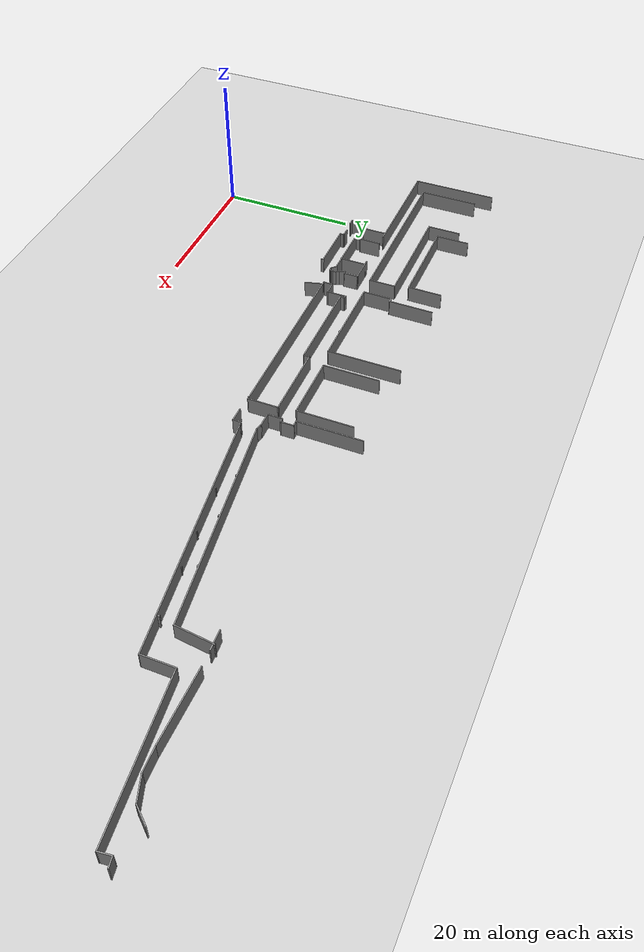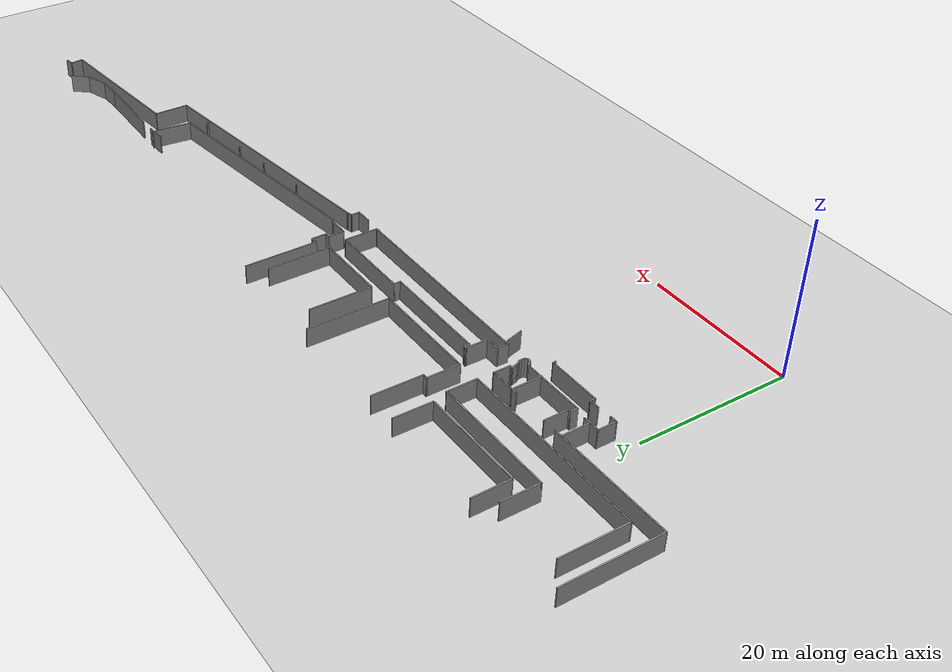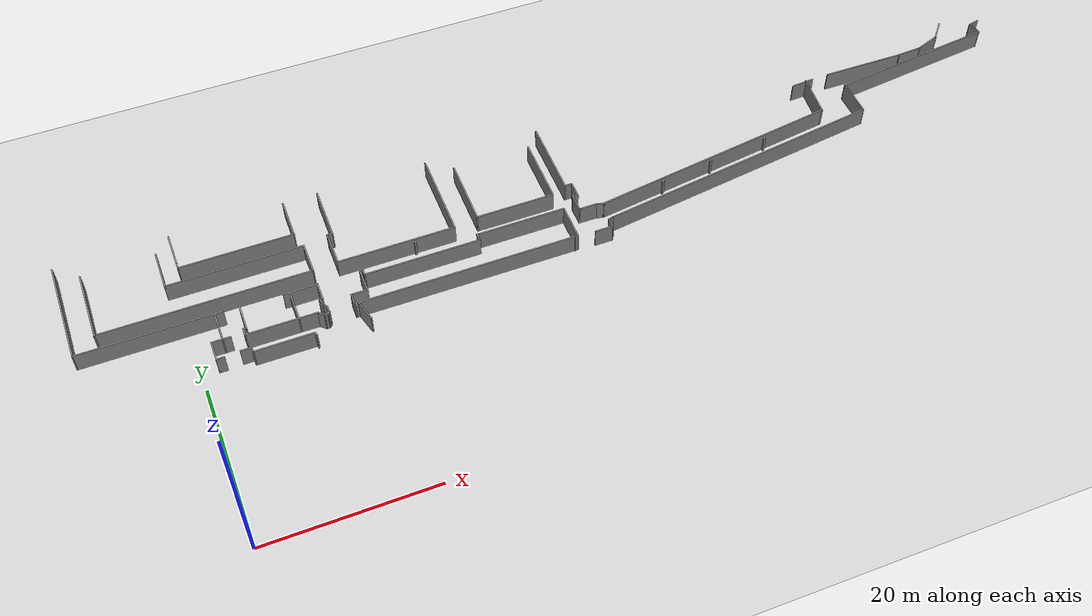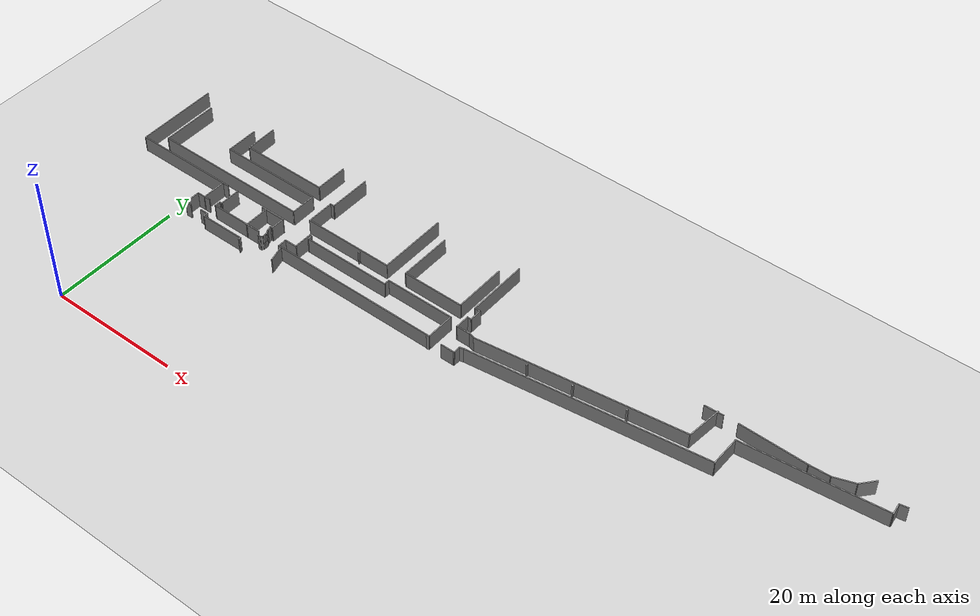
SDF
<sdf version="1.6">
 <world name="default">
  <model name="ground_plane">
   <static>1</static>
   <link name="link">
    <collision name="collision">
     <geometry><plane><normal>0 0 1</normal><size>100 100</size></plane></geometry>
     <surface><friction><ode><mu>100</mu><mu2>50</mu2></ode></friction></surface>
    </collision>
    <visual name="visual">
     <cast_shadows>0</cast_shadows>
     <geometry><plane><normal>0 0 1</normal><size>100 100</size></plane></geometry>
     <material>
      <script><uri>file://media/materials/scripts/gazebo.material</uri><name>Gazebo/Grey</name></script>
     </material>
    </visual>
   </link>
  </model>
  <model name="CMU">
   <pose>62.2844 43.535 0 0 -0 0</pose>
   <link name="Wall_10">
    <collision name="Wall_10_Collision">
     <geometry><box><size>3.75 0.15 2.5</size></box></geometry>
     <pose>0 0 1.25 0 -0 0</pose>
    </collision>
    <visual name="Wall_10_Visual">
     <pose>0 0 1.25 0 -0 0</pose>
     <geometry><box><size>3.75 0.15 2.5</size></box></geometry>
     <material>
      <script><uri>file://media/materials/scripts/gazebo.material</uri><name>Gazebo/Grey</name></script>
      <ambient>1 1 1 1</ambient>
     </material>
    </visual>
    <pose>-59.2095 -17.5724 0 0 -0 1.5708</pose>
   </link>
   <link name="Wall_119">
    <collision name="Wall_119_Collision">
     <geometry><box><size>2.25 0.15 2.5</size></box></geometry>
     <pose>0 0 1.25 0 -0 0</pose>
    </collision>
    <visual name="Wall_119_Visual">
     <pose>0 0 1.25 0 -0 0</pose>
     <geometry><box><size>2.25 0.15 2.5</size></box></geometry>
     <material>
      <script><uri>file://media/materials/scripts/gazebo.material</uri><name>Gazebo/Grey</name></script>
      <ambient>1 1 1 1</ambient>
     </material>
    </visual>
    <pose>-15.0214 -20.1474 0 0 -0 0</pose>
   </link>
   <link name="Wall_12">
    <collision name="Wall_12_Collision">
     <geometry><box><size>16.5 0.15 2.5</size></box></geometry>
     <pose>0 0 1.25 0 -0 0</pose>
    </collision>
    <visual name="Wall_12_Visual">
     <pose>0 0 1.25 0 -0 0</pose>
     <geometry><box><size>16.5 0.15 2.5</size></box></geometry>
     <material>
      <script><uri>file://media/materials/scripts/gazebo.material</uri><name>Gazebo/Grey</name></script>
      <ambient>1 1 1 1</ambient>
     </material>
    </visual>
    <pose>-66.4698 -15.7138 0 0 -0 3.14159</pose>
   </link>
   <link name="Wall_120">
    <collision name="Wall_120_Collision">
     <geometry><box><size>1.25 0.15 2.5</size></box></geometry>
     <pose>0 0 1.25 0 -0 0</pose>
    </collision>
    <visual name="Wall_120_Visual">
     <pose>0 0 1.25 0 -0 0</pose>
     <geometry><box><size>1.25 0.15 2.5</size></box></geometry>
     <material>
      <script><uri>file://media/materials/scripts/gazebo.material</uri><name>Gazebo/Grey</name></script>
      <ambient>1 1 1 1</ambient>
     </material>
    </visual>
    <pose>-13.9714 -19.5974 0 0 -0 1.5708</pose>
   </link>
   <link name="Wall_121">
    <collision name="Wall_121_Collision">
     <geometry><box><size>0.75 0.15 2.5</size></box></geometry>
     <pose>0 0 1.25 0 -0 0</pose>
    </collision>
    <visual name="Wall_121_Visual">
     <pose>0 0 1.25 0 -0 0</pose>
     <geometry><box><size>0.75 0.15 2.5</size></box></geometry>
     <material>
      <script><uri>file://media/materials/scripts/gazebo.material</uri><name>Gazebo/Grey</name></script>
      <ambient>1 1 1 1</ambient>
     </material>
    </visual>
    <pose>-13.6817 -18.9697 0 0 -0 0.261799</pose>
   </link>
   <link name="Wall_122">
    <collision name="Wall_122_Collision">
     <geometry><box><size>35.5943 0.15 2.5</size></box></geometry>
     <pose>0 0 1.25 0 -0 0</pose>
    </collision>
    <visual name="Wall_122_Visual">
     <pose>0 0 1.25 0 -0 0</pose>
     <geometry><box><size>35.5943 0.15 2.5</size></box></geometry>
     <material>
      <script><uri>file://media/materials/scripts/gazebo.material</uri><name>Gazebo/Grey</name></script>
      <ambient>1 1 1 1</ambient>
     </material>
    </visual>
    <pose>4.17697 -16.5662 0 0 -0 0.131623</pose>
   </link>
   <link name="Wall_123">
    <collision name="Wall_123_Collision">
     <geometry><box><size>4.70748 0.15 2.5</size></box></geometry>
     <pose>0 0 1.25 0 -0 0</pose>
    </collision>
    <visual name="Wall_123_Visual">
     <pose>0 0 1.25 0 -0 0</pose>
     <geometry><box><size>4.70748 0.15 2.5</size></box></geometry>
     <material>
      <script><uri>file://media/materials/scripts/gazebo.material</uri><name>Gazebo/Grey</name></script>
      <ambient>1 1 1 1</ambient>
     </material>
    </visual>
    <pose>21.7458 -11.9619 0 0 -0 1.5708</pose>
   </link>
   <link name="Wall_125">
    <collision name="Wall_125_Collision">
     <geometry><box><size>20.8151 0.15 2.5</size></box></geometry>
     <pose>0 0 1.25 0 -0 0</pose>
    </collision>
    <visual name="Wall_125_Visual">
     <pose>0 0 1.25 0 -0 0</pose>
     <geometry><box><size>20.8151 0.15 2.5</size></box></geometry>
     <material>
      <script><uri>file://media/materials/scripts/gazebo.material</uri><name>Gazebo/Grey</name></script>
      <ambient>1 1 1 1</ambient>
     </material>
    </visual>
    <pose>32.0165 -8.55504 0 0 -0 0.109431</pose>
   </link>
   <link name="Wall_126">
    <collision name="Wall_126_Collision">
     <geometry><box><size>1.82233 0.15 2.5</size></box></geometry>
     <pose>0 0 1.25 0 -0 0</pose>
    </collision>
    <visual name="Wall_126_Visual">
     <pose>0 0 1.25 0 -0 0</pose>
     <geometry><box><size>1.82233 0.15 2.5</size></box></geometry>
     <material>
      <script><uri>file://media/materials/scripts/gazebo.material</uri><name>Gazebo/Grey</name></script>
      <ambient>1 1 1 1</ambient>
     </material>
    </visual>
    <pose>42.1803 -6.59731 0 0 -0 1.69912</pose>
   </link>
   <link name="Wall_127">
    <collision name="Wall_127_Collision">
     <geometry><box><size>1.34635 0.15 2.5</size></box></geometry>
     <pose>0 0 1.25 0 -0 0</pose>
    </collision>
    <visual name="Wall_127_Visual">
     <pose>0 0 1.25 0 -0 0</pose>
     <geometry><box><size>1.34635 0.15 2.5</size></box></geometry>
     <material>
      <script><uri>file://media/materials/scripts/gazebo.material</uri><name>Gazebo/Grey</name></script>
      <ambient>1 1 1 1</ambient>
     </material>
    </visual>
    <pose>42.6618 -5.66101 0 0 -0 0.179853</pose>
   </link>
   <link name="Wall_13">
    <collision name="Wall_13_Collision">
     <geometry><box><size>12.7464 0.15 2.5</size></box></geometry>
     <pose>0 0 1.25 0 -0 0</pose>
    </collision>
    <visual name="Wall_13_Visual">
     <pose>0 0 1.25 0 -0 0</pose>
     <geometry><box><size>12.7464 0.15 2.5</size></box></geometry>
     <material>
      <script><uri>file://media/materials/scripts/gazebo.material</uri><name>Gazebo/Grey</name></script>
      <ambient>1 1 1 1</ambient>
     </material>
    </visual>
    <pose>-74.6624 -9.4157 0 0 -0 1.57359</pose>
   </link>
   <link name="Wall_15">
    <collision name="Wall_15_Collision">
     <geometry><box><size>4.99676 0.15 2.5</size></box></geometry>
     <pose>0 0 1.25 0 -0 0</pose>
    </collision>
    <visual name="Wall_15_Visual">
     <pose>0 0 1.25 0 -0 0</pose>
     <geometry><box><size>4.99676 0.15 2.5</size></box></geometry>
     <material>
      <script><uri>file://media/materials/scripts/gazebo.material</uri><name>Gazebo/Grey</name></script>
      <ambient>1 1 1 1</ambient>
     </material>
    </visual>
    <pose>-61.5624 -5.5407 0 0 0 -1.56354</pose>
   </link>
   <link name="Wall_16">
    <collision name="Wall_16_Collision">
     <geometry><box><size>13.5 0.15 2.5</size></box></geometry>
     <pose>0 0 1.25 0 -0 0</pose>
    </collision>
    <visual name="Wall_16_Visual">
     <pose>0 0 1.25 0 -0 0</pose>
     <geometry><box><size>13.5 0.15 2.5</size></box></geometry>
     <material>
      <script><uri>file://media/materials/scripts/gazebo.material</uri><name>Gazebo/Grey</name></script>
      <ambient>1 1 1 1</ambient>
     </material>
    </visual>
    <pose>-54.8698 -7.96382 0 0 -0 0</pose>
   </link>
   <link name="Wall_17">
    <collision name="Wall_17_Collision">
     <geometry><box><size>5.08355 0.15 2.5</size></box></geometry>
     <pose>0 0 1.25 0 -0 0</pose>
    </collision>
    <visual name="Wall_17_Visual">
     <pose>0 0 1.25 0 -0 0</pose>
     <geometry><box><size>5.08355 0.15 2.5</size></box></geometry>
     <material>
      <script><uri>file://media/materials/scripts/gazebo.material</uri><name>Gazebo/Grey</name></script>
      <ambient>1 1 1 1</ambient>
     </material>
    </visual>
    <pose>-48.1773 -5.4973 0 0 -0 1.56367</pose>
   </link>
   <link name="Wall_19">
    <collision name="Wall_19_Collision">
     <geometry><box><size>6.58343 0.15 2.5</size></box></geometry>
     <pose>0 0 1.25 0 -0 0</pose>
    </collision>
    <visual name="Wall_19_Visual">
     <pose>0 0 1.25 0 -0 0</pose>
     <geometry><box><size>6.58343 0.15 2.5</size></box></geometry>
     <material>
      <script><uri>file://media/materials/scripts/gazebo.material</uri><name>Gazebo/Grey</name></script>
      <ambient>1 1 1 1</ambient>
     </material>
    </visual>
    <pose>-44.0772 -6.2473 0 0 0 -1.57627</pose>
   </link>
   <link name="Wall_20">
    <collision name="Wall_20_Collision">
     <geometry><box><size>0.75 0.15 2.5</size></box></geometry>
     <pose>0 0 1.25 0 -0 0</pose>
    </collision>
    <visual name="Wall_20_Visual">
     <pose>0 0 1.25 0 -0 0</pose>
     <geometry><box><size>0.75 0.15 2.5</size></box></geometry>
     <material>
      <script><uri>file://media/materials/scripts/gazebo.material</uri><name>Gazebo/Grey</name></script>
      <ambient>1 1 1 1</ambient>
     </material>
    </visual>
    <pose>-44.3948 -9.46382 0 0 -0 3.14159</pose>
   </link>
   <link name="Wall_205">
    <collision name="Wall_205_Collision">
     <geometry><box><size>5.46234 0.15 2.5</size></box></geometry>
     <pose>0 0 1.25 0 -0 0</pose>
    </collision>
    <visual name="Wall_205_Visual">
     <pose>0 0 1.25 0 -0 0</pose>
     <geometry><box><size>5.46234 0.15 2.5</size></box></geometry>
     <material>
      <script><uri>file://media/materials/scripts/gazebo.material</uri><name>Gazebo/Grey</name></script>
      <ambient>1 1 1 1</ambient>
     </material>
    </visual>
    <pose>17.2867 -9.85995 0 0 0 -1.67397</pose>
   </link>
   <link name="Wall_207">
    <collision name="Wall_207_Collision">
     <geometry><box><size>2.84249 0.15 2.5</size></box></geometry>
     <pose>0 0 1.25 0 -0 0</pose>
    </collision>
    <visual name="Wall_207_Visual">
     <pose>0 0 1.25 0 -0 0</pose>
     <geometry><box><size>2.84249 0.15 2.5</size></box></geometry>
     <material>
      <script><uri>file://media/materials/scripts/gazebo.material</uri><name>Gazebo/Grey</name></script>
      <ambient>1 1 1 1</ambient>
     </material>
    </visual>
    <pose>17.0593 -7.39826 0 0 -0 0.052583</pose>
   </link>
   <link name="Wall_209">
    <collision name="Wall_209_Collision">
     <geometry><box><size>10.1985 0.15 2.5</size></box></geometry>
     <pose>0 0 1.25 0 -0 0</pose>
    </collision>
    <visual name="Wall_209_Visual">
     <pose>0 0 1.25 0 -0 0</pose>
     <geometry><box><size>10.1985 0.15 2.5</size></box></geometry>
     <material>
      <script><uri>file://media/materials/scripts/gazebo.material</uri><name>Gazebo/Grey</name></script>
      <ambient>1 1 1 1</ambient>
     </material>
    </visual>
    <pose>25.6363 -7.33673 0 0 0 -0.014084</pose>
   </link>
   <link name="Wall_21">
    <collision name="Wall_21_Collision">
     <geometry><box><size>4.32036 0.15 2.5</size></box></geometry>
     <pose>0 0 1.25 0 -0 0</pose>
    </collision>
    <visual name="Wall_21_Visual">
     <pose>0 0 1.25 0 -0 0</pose>
     <geometry><box><size>4.32036 0.15 2.5</size></box></geometry>
     <material>
      <script><uri>file://media/materials/scripts/gazebo.material</uri><name>Gazebo/Grey</name></script>
      <ambient>1 1 1 1</ambient>
     </material>
    </visual>
    <pose>-44.6948 -11.549 0 0 0 -1.5708</pose>
   </link>
   <link name="Wall_210">
    <collision name="Wall_210_Collision">
     <geometry><box><size>3.19584 0.15 2.5</size></box></geometry>
     <pose>0 0 1.25 0 -0 0</pose>
    </collision>
    <visual name="Wall_210_Visual">
     <pose>0 0 1.25 0 -0 0</pose>
     <geometry><box><size>3.19584 0.15 2.5</size></box></geometry>
     <material>
      <script><uri>file://media/materials/scripts/gazebo.material</uri><name>Gazebo/Grey</name></script>
      <ambient>1 1 1 1</ambient>
     </material>
    </visual>
    <pose>32.1814 -7.33673 0 0 -0 0.046478</pose>
   </link>
   <link name="Wall_211">
    <collision name="Wall_211_Collision">
     <geometry><box><size>3.37236 0.15 2.5</size></box></geometry>
     <pose>0 0 1.25 0 -0 0</pose>
    </collision>
    <visual name="Wall_211_Visual">
     <pose>0 0 1.25 0 -0 0</pose>
     <geometry><box><size>3.37236 0.15 2.5</size></box></geometry>
     <material>
      <script><uri>file://media/materials/scripts/gazebo.material</uri><name>Gazebo/Grey</name></script>
      <ambient>1 1 1 1</ambient>
     </material>
    </visual>
    <pose>35.2239 -6.73529 0 0 -0 0.335639</pose>
   </link>
   <link name="Wall_212">
    <collision name="Wall_212_Collision">
     <geometry><box><size>2.65963 0.15 2.5</size></box></geometry>
     <pose>0 0 1.25 0 -0 0</pose>
    </collision>
    <visual name="Wall_212_Visual">
     <pose>0 0 1.25 0 -0 0</pose>
     <geometry><box><size>2.65963 0.15 2.5</size></box></geometry>
     <material>
      <script><uri>file://media/materials/scripts/gazebo.material</uri><name>Gazebo/Grey</name></script>
      <ambient>1 1 1 1</ambient>
     </material>
    </visual>
    <pose>37.5589 -5.2494 0 0 -0 0.865228</pose>
   </link>
   <link name="Wall_22">
    <collision name="Wall_22_Collision">
     <geometry><box><size>14 0.15 2.5</size></box></geometry>
     <pose>0 0 1.25 0 -0 0</pose>
    </collision>
    <visual name="Wall_22_Visual">
     <pose>0 0 1.25 0 -0 0</pose>
     <geometry><box><size>14 0.15 2.5</size></box></geometry>
     <material>
      <script><uri>file://media/materials/scripts/gazebo.material</uri><name>Gazebo/Grey</name></script>
      <ambient>1 1 1 1</ambient>
     </material>
    </visual>
    <pose>-37.7698 -13.6694 0 0 -0 0</pose>
   </link>
   <link name="Wall_23">
    <collision name="Wall_23_Collision">
     <geometry><box><size>10.7111 0.15 2.5</size></box></geometry>
     <pose>0 0 1.25 0 -0 0</pose>
    </collision>
    <visual name="Wall_23_Visual">
     <pose>0 0 1.25 0 -0 0</pose>
     <geometry><box><size>10.7111 0.15 2.5</size></box></geometry>
     <material>
      <script><uri>file://media/materials/scripts/gazebo.material</uri><name>Gazebo/Grey</name></script>
      <ambient>1 1 1 1</ambient>
     </material>
    </visual>
    <pose>-30.8448 -8.35365 0 0 -0 1.5708</pose>
   </link>
   <link name="Wall_26">
    <collision name="Wall_26_Collision">
     <geometry><box><size>9.5 0.15 2.5</size></box></geometry>
     <pose>0 0 1.25 0 -0 0</pose>
    </collision>
    <visual name="Wall_26_Visual">
     <pose>0 0 1.25 0 -0 0</pose>
     <geometry><box><size>9.5 0.15 2.5</size></box></geometry>
     <material>
      <script><uri>file://media/materials/scripts/gazebo.material</uri><name>Gazebo/Grey</name></script>
      <ambient>1 1 1 1</ambient>
     </material>
    </visual>
    <pose>-16.78 -7.74811 0 0 0 -1.5708</pose>
   </link>
   <link name="Wall_27">
    <collision name="Wall_27_Collision">
     <geometry><box><size>1 0.15 2.5</size></box></geometry>
     <pose>0 0 1.25 0 -0 0</pose>
    </collision>
    <visual name="Wall_27_Visual">
     <pose>0 0 1.25 0 -0 0</pose>
     <geometry><box><size>1 0.15 2.5</size></box></geometry>
     <material>
      <script><uri>file://media/materials/scripts/gazebo.material</uri><name>Gazebo/Grey</name></script>
      <ambient>1 1 1 1</ambient>
     </material>
    </visual>
    <pose>-16.355 -12.4231 0 0 -0 0</pose>
   </link>
   <link name="Wall_28">
    <collision name="Wall_28_Collision">
     <geometry><box><size>2 0.15 2.5</size></box></geometry>
     <pose>0 0 1.25 0 -0 0</pose>
    </collision>
    <visual name="Wall_28_Visual">
     <pose>0 0 1.25 0 -0 0</pose>
     <geometry><box><size>2 0.15 2.5</size></box></geometry>
     <material>
      <script><uri>file://media/materials/scripts/gazebo.material</uri><name>Gazebo/Grey</name></script>
      <ambient>1 1 1 1</ambient>
     </material>
    </visual>
    <pose>-15.93 -13.3481 0 0 0 -1.5708</pose>
   </link>
   <link name="Wall_29">
    <collision name="Wall_29_Collision">
     <geometry><box><size>0.75 0.15 2.5</size></box></geometry>
     <pose>0 0 1.25 0 -0 0</pose>
    </collision>
    <visual name="Wall_29_Visual">
     <pose>0 0 1.25 0 -0 0</pose>
     <geometry><box><size>0.75 0.15 2.5</size></box></geometry>
     <material>
      <script><uri>file://media/materials/scripts/gazebo.material</uri><name>Gazebo/Grey</name></script>
      <ambient>1 1 1 1</ambient>
     </material>
    </visual>
    <pose>-16.23 -14.2731 0 0 -0 3.14159</pose>
   </link>
   <link name="Wall_30">
    <collision name="Wall_30_Collision">
     <geometry><box><size>2.25 0.15 2.5</size></box></geometry>
     <pose>0 0 1.25 0 -0 0</pose>
    </collision>
    <visual name="Wall_30_Visual">
     <pose>0 0 1.25 0 -0 0</pose>
     <geometry><box><size>2.25 0.15 2.5</size></box></geometry>
     <material>
      <script><uri>file://media/materials/scripts/gazebo.material</uri><name>Gazebo/Grey</name></script>
      <ambient>1 1 1 1</ambient>
     </material>
    </visual>
    <pose>-16.53 -15.3231 0 0 0 -1.5708</pose>
   </link>
   <link name="Wall_31">
    <collision name="Wall_31_Collision">
     <geometry><box><size>2.25 0.15 2.5</size></box></geometry>
     <pose>0 0 1.25 0 -0 0</pose>
    </collision>
    <visual name="Wall_31_Visual">
     <pose>0 0 1.25 0 -0 0</pose>
     <geometry><box><size>2.25 0.15 2.5</size></box></geometry>
     <material>
      <script><uri>file://media/materials/scripts/gazebo.material</uri><name>Gazebo/Grey</name></script>
      <ambient>1 1 1 1</ambient>
     </material>
    </visual>
    <pose>-15.48 -16.3731 0 0 -0 0</pose>
   </link>
   <link name="Wall_32">
    <collision name="Wall_32_Collision">
     <geometry><box><size>1 0.15 2.5</size></box></geometry>
     <pose>0 0 1.25 0 -0 0</pose>
    </collision>
    <visual name="Wall_32_Visual">
     <pose>0 0 1.25 0 -0 0</pose>
     <geometry><box><size>1 0.15 2.5</size></box></geometry>
     <material>
      <script><uri>file://media/materials/scripts/gazebo.material</uri><name>Gazebo/Grey</name></script>
      <ambient>1 1 1 1</ambient>
     </material>
    </visual>
    <pose>-14.0195 -16.4831 0 0 0 -0.261799</pose>
   </link>
   <link name="Wall_33">
    <collision name="Wall_33_Collision">
     <geometry><box><size>30.9867 0.15 2.5</size></box></geometry>
     <pose>0 0 1.25 0 -0 0</pose>
    </collision>
    <visual name="Wall_33_Visual">
     <pose>0 0 1.25 0 -0 0</pose>
     <geometry><box><size>30.9867 0.15 2.5</size></box></geometry>
     <material>
      <script><uri>file://media/materials/scripts/gazebo.material</uri><name>Gazebo/Grey</name></script>
      <ambient>1 1 1 1</ambient>
     </material>
    </visual>
    <pose>1.67172 -14.5375 0 0 -0 0.133719</pose>
   </link>
   <link name="Wall_35">
    <collision name="Wall_35_Collision">
     <geometry><box><size>8.25 0.15 2.5</size></box></geometry>
     <pose>0 0 1.25 0 -0 0</pose>
    </collision>
    <visual name="Wall_35_Visual">
     <pose>0 0 1.25 0 -0 0</pose>
     <geometry><box><size>8.25 0.15 2.5</size></box></geometry>
     <material>
      <script><uri>file://media/materials/scripts/gazebo.material</uri><name>Gazebo/Grey</name></script>
      <ambient>1 1 1 1</ambient>
     </material>
    </visual>
    <pose>-27.9432 -9.1298 0 0 -0 1.5708</pose>
   </link>
   <link name="Wall_37">
    <collision name="Wall_37_Collision">
     <geometry><box><size>8.25 0.15 2.5</size></box></geometry>
     <pose>0 0 1.25 0 -0 0</pose>
    </collision>
    <visual name="Wall_37_Visual">
     <pose>0 0 1.25 0 -0 0</pose>
     <geometry><box><size>8.25 0.15 2.5</size></box></geometry>
     <material>
      <script><uri>file://media/materials/scripts/gazebo.material</uri><name>Gazebo/Grey</name></script>
      <ambient>1 1 1 1</ambient>
     </material>
    </visual>
    <pose>-18.5932 -9.1298 0 0 0 -1.5708</pose>
   </link>
   <link name="Wall_38">
    <collision name="Wall_38_Collision">
     <geometry><box><size>9.5 0.15 2.5</size></box></geometry>
     <pose>0 0 1.25 0 -0 0</pose>
    </collision>
    <visual name="Wall_38_Visual">
     <pose>0 0 1.25 0 -0 0</pose>
     <geometry><box><size>9.5 0.15 2.5</size></box></geometry>
     <material>
      <script><uri>file://media/materials/scripts/gazebo.material</uri><name>Gazebo/Grey</name></script>
      <ambient>1 1 1 1</ambient>
     </material>
    </visual>
    <pose>-23.2682 -13.1798 0 0 -0 3.14159</pose>
   </link>
   <link name="Wall_43">
    <collision name="Wall_43_Collision">
     <geometry><box><size>0.5 0.15 2.5</size></box></geometry>
     <pose>0 0 1.25 0 -0 0</pose>
    </collision>
    <visual name="Wall_43_Visual">
     <pose>0 0 1.25 0 -0 0</pose>
     <geometry><box><size>0.5 0.15 2.5</size></box></geometry>
     <material>
      <script><uri>file://media/materials/scripts/gazebo.material</uri><name>Gazebo/Grey</name></script>
      <ambient>1 1 1 1</ambient>
     </material>
    </visual>
    <pose>-18.3787 -20.0321 0 0 -0 0.261799</pose>
   </link>
   <link name="Wall_44">
    <collision name="Wall_44_Collision">
     <geometry><box><size>4.5 0.15 2.5</size></box></geometry>
     <pose>0 0 1.25 0 -0 0</pose>
    </collision>
    <visual name="Wall_44_Visual">
     <pose>0 0 1.25 0 -0 0</pose>
     <geometry><box><size>4.5 0.15 2.5</size></box></geometry>
     <material>
      <script><uri>file://media/materials/scripts/gazebo.material</uri><name>Gazebo/Grey</name></script>
      <ambient>1 1 1 1</ambient>
     </material>
    </visual>
    <pose>-18.2097 -17.8118 0 0 -0 1.5708</pose>
   </link>
   <link name="Wall_45">
    <collision name="Wall_45_Collision">
     <geometry><box><size>10.75 0.15 2.5</size></box></geometry>
     <pose>0 0 1.25 0 -0 0</pose>
    </collision>
    <visual name="Wall_45_Visual">
     <pose>0 0 1.25 0 -0 0</pose>
     <geometry><box><size>10.75 0.15 2.5</size></box></geometry>
     <material>
      <script><uri>file://media/materials/scripts/gazebo.material</uri><name>Gazebo/Grey</name></script>
      <ambient>1 1 1 1</ambient>
     </material>
    </visual>
    <pose>-23.5097 -15.6368 0 0 -0 3.14159</pose>
   </link>
   <link name="Wall_46">
    <collision name="Wall_46_Collision">
     <geometry><box><size>1 0.15 2.5</size></box></geometry>
     <pose>0 0 1.25 0 -0 0</pose>
    </collision>
    <visual name="Wall_46_Visual">
     <pose>0 0 1.25 0 -0 0</pose>
     <geometry><box><size>1 0.15 2.5</size></box></geometry>
     <material>
      <script><uri>file://media/materials/scripts/gazebo.material</uri><name>Gazebo/Grey</name></script>
      <ambient>1 1 1 1</ambient>
     </material>
    </visual>
    <pose>-28.8097 -16.0618 0 0 0 -1.5708</pose>
   </link>
   <link name="Wall_47">
    <collision name="Wall_47_Collision">
     <geometry><box><size>13.75 0.15 2.5</size></box></geometry>
     <pose>0 0 1.25 0 -0 0</pose>
    </collision>
    <visual name="Wall_47_Visual">
     <pose>0 0 1.25 0 -0 0</pose>
     <geometry><box><size>13.75 0.15 2.5</size></box></geometry>
     <material>
      <script><uri>file://media/materials/scripts/gazebo.material</uri><name>Gazebo/Grey</name></script>
      <ambient>1 1 1 1</ambient>
     </material>
    </visual>
    <pose>-35.6097 -16.4868 0 0 -0 3.14159</pose>
   </link>
   <link name="Wall_48">
    <collision name="Wall_48_Collision">
     <geometry><box><size>0.75 0.15 2.5</size></box></geometry>
     <pose>0 0 1.25 0 -0 0</pose>
    </collision>
    <visual name="Wall_48_Visual">
     <pose>0 0 1.25 0 -0 0</pose>
     <geometry><box><size>0.75 0.15 2.5</size></box></geometry>
     <material>
      <script><uri>file://media/materials/scripts/gazebo.material</uri><name>Gazebo/Grey</name></script>
      <ambient>1 1 1 1</ambient>
     </material>
    </visual>
    <pose>-42.4097 -16.1868 0 0 -0 1.5708</pose>
   </link>
   <link name="Wall_49">
    <collision name="Wall_49_Collision">
     <geometry><box><size>0.5 0.15 2.5</size></box></geometry>
     <pose>0 0 1.25 0 -0 0</pose>
    </collision>
    <visual name="Wall_49_Visual">
     <pose>0 0 1.25 0 -0 0</pose>
     <geometry><box><size>0.5 0.15 2.5</size></box></geometry>
     <material>
      <script><uri>file://media/materials/scripts/gazebo.material</uri><name>Gazebo/Grey</name></script>
      <ambient>1 1 1 1</ambient>
     </material>
    </visual>
    <pose>-42.5787 -15.8415 0 0 -0 2.87979</pose>
   </link>
   <link name="Wall_50">
    <collision name="Wall_50_Collision">
     <geometry><box><size>3 0.15 2.5</size></box></geometry>
     <pose>0 0 1.25 0 -0 0</pose>
    </collision>
    <visual name="Wall_50_Visual">
     <pose>0 0 1.25 0 -0 0</pose>
     <geometry><box><size>3 0.15 2.5</size></box></geometry>
     <material>
      <script><uri>file://media/materials/scripts/gazebo.material</uri><name>Gazebo/Grey</name></script>
      <ambient>1 1 1 1</ambient>
     </material>
    </visual>
    <pose>-42.7478 -17.2212 0 0 0 -1.5708</pose>
   </link>
   <link name="Wall_51">
    <collision name="Wall_51_Collision">
     <geometry><box><size>2 0.15 2.5</size></box></geometry>
     <pose>0 0 1.25 0 -0 0</pose>
    </collision>
    <visual name="Wall_51_Visual">
     <pose>0 0 1.25 0 -0 0</pose>
     <geometry><box><size>2 0.15 2.5</size></box></geometry>
     <material>
      <script><uri>file://media/materials/scripts/gazebo.material</uri><name>Gazebo/Grey</name></script>
      <ambient>1 1 1 1</ambient>
     </material>
    </visual>
    <pose>-43.6728 -18.6462 0 0 -0 3.14159</pose>
   </link>
   <link name="Wall_52">
    <collision name="Wall_52_Collision">
     <geometry><box><size>1.5 0.15 2.5</size></box></geometry>
     <pose>0 0 1.25 0 -0 0</pose>
    </collision>
    <visual name="Wall_52_Visual">
     <pose>0 0 1.25 0 -0 0</pose>
     <geometry><box><size>1.5 0.15 2.5</size></box></geometry>
     <material>
      <script><uri>file://media/materials/scripts/gazebo.material</uri><name>Gazebo/Grey</name></script>
      <ambient>1 1 1 1</ambient>
     </material>
    </visual>
    <pose>-44.5978 -19.3212 0 0 0 -1.5708</pose>
   </link>
   <link name="Wall_53">
    <collision name="Wall_53_Collision">
     <geometry><box><size>26.25 0.15 2.5</size></box></geometry>
     <pose>0 0 1.25 0 -0 0</pose>
    </collision>
    <visual name="Wall_53_Visual">
     <pose>0 0 1.25 0 -0 0</pose>
     <geometry><box><size>26.25 0.15 2.5</size></box></geometry>
     <material>
      <script><uri>file://media/materials/scripts/gazebo.material</uri><name>Gazebo/Grey</name></script>
      <ambient>1 1 1 1</ambient>
     </material>
    </visual>
    <pose>-31.5478 -19.9962 0 0 -0 0</pose>
   </link>
   <link name="Wall_55">
    <collision name="Wall_55_Collision">
     <geometry><box><size>2.75 0.15 2.5</size></box></geometry>
     <pose>0 0 1.25 0 -0 0</pose>
    </collision>
    <visual name="Wall_55_Visual">
     <pose>0 0 1.25 0 -0 0</pose>
     <geometry><box><size>2.75 0.15 2.5</size></box></geometry>
     <material>
      <script><uri>file://media/materials/scripts/gazebo.material</uri><name>Gazebo/Grey</name></script>
      <ambient>1 1 1 1</ambient>
     </material>
    </visual>
    <pose>-43.8355 -21.2601 0 0 0 -1.309</pose>
   </link>
   <link name="Wall_6">
    <collision name="Wall_6_Collision">
     <geometry><box><size>1 0.15 2.5</size></box></geometry>
     <pose>0 0 1.25 0 -0 0</pose>
    </collision>
    <visual name="Wall_6_Visual">
     <pose>0 0 1.25 0 -0 0</pose>
     <geometry><box><size>1 0.15 2.5</size></box></geometry>
     <material>
      <script><uri>file://media/materials/scripts/gazebo.material</uri><name>Gazebo/Grey</name></script>
      <ambient>1 1 1 1</ambient>
     </material>
    </visual>
    <pose>-60.0241 -21.7197 0 0 -0 3.14159</pose>
   </link>
   <link name="Wall_63">
    <collision name="Wall_63_Collision">
     <geometry><box><size>5 0.15 2.5</size></box></geometry>
     <pose>0 0 1.25 0 -0 0</pose>
    </collision>
    <visual name="Wall_63_Visual">
     <pose>0 0 1.25 0 -0 0</pose>
     <geometry><box><size>5 0.15 2.5</size></box></geometry>
     <material>
      <script><uri>file://media/materials/scripts/gazebo.material</uri><name>Gazebo/Grey</name></script>
      <ambient>1 1 1 1</ambient>
     </material>
    </visual>
    <pose>-63.4597 -7.5561 0 0 0 -1.5708</pose>
   </link>
   <link name="Wall_64">
    <collision name="Wall_64_Collision">
     <geometry><box><size>16 0.15 2.5</size></box></geometry>
     <pose>0 0 1.25 0 -0 0</pose>
    </collision>
    <visual name="Wall_64_Visual">
     <pose>0 0 1.25 0 -0 0</pose>
     <geometry><box><size>16 0.15 2.5</size></box></geometry>
     <material>
      <script><uri>file://media/materials/scripts/gazebo.material</uri><name>Gazebo/Grey</name></script>
      <ambient>1 1 1 1</ambient>
     </material>
    </visual>
    <pose>-55.5347 -9.9811 0 0 -0 0</pose>
   </link>
   <link name="Wall_65">
    <collision name="Wall_65_Collision">
     <geometry><box><size>4 0.15 2.5</size></box></geometry>
     <pose>0 0 1.25 0 -0 0</pose>
    </collision>
    <visual name="Wall_65_Visual">
     <pose>0 0 1.25 0 -0 0</pose>
     <geometry><box><size>4 0.15 2.5</size></box></geometry>
     <material>
      <script><uri>file://media/materials/scripts/gazebo.material</uri><name>Gazebo/Grey</name></script>
      <ambient>1 1 1 1</ambient>
     </material>
    </visual>
    <pose>-47.5945 -11.9061 0 0 0 -1.5629</pose>
   </link>
   <link name="Wall_66">
    <collision name="Wall_66_Collision">
     <geometry><box><size>24.5304 0.15 2.5</size></box></geometry>
     <pose>0 0 1.25 0 -0 0</pose>
    </collision>
    <visual name="Wall_66_Visual">
     <pose>0 0 1.25 0 -0 0</pose>
     <geometry><box><size>24.5304 0.15 2.5</size></box></geometry>
     <material>
      <script><uri>file://media/materials/scripts/gazebo.material</uri><name>Gazebo/Grey</name></script>
      <ambient>1 1 1 1</ambient>
     </material>
    </visual>
    <pose>-59.7847 -13.8311 0 0 -0 3.14159</pose>
   </link>
   <link name="Wall_67">
    <collision name="Wall_67_Collision">
     <geometry><box><size>8.75 0.15 2.5</size></box></geometry>
     <pose>0 0 1.25 0 -0 0</pose>
    </collision>
    <visual name="Wall_67_Visual">
     <pose>0 0 1.25 0 -0 0</pose>
     <geometry><box><size>8.75 0.15 2.5</size></box></geometry>
     <material>
      <script><uri>file://media/materials/scripts/gazebo.material</uri><name>Gazebo/Grey</name></script>
      <ambient>1 1 1 1</ambient>
     </material>
    </visual>
    <pose>-71.9597 -9.5311 0 0 -0 1.5708</pose>
   </link>
   <link name="Wall_69">
    <collision name="Wall_69_Collision">
     <geometry><box><size>3.25 0.15 2.5</size></box></geometry>
     <pose>0 0 1.25 0 -0 0</pose>
    </collision>
    <visual name="Wall_69_Visual">
     <pose>0 0 1.25 0 -0 0</pose>
     <geometry><box><size>3.25 0.15 2.5</size></box></geometry>
     <material>
      <script><uri>file://media/materials/scripts/gazebo.material</uri><name>Gazebo/Grey</name></script>
      <ambient>1 1 1 1</ambient>
     </material>
    </visual>
    <pose>-56.4576 -17.2822 0 0 0 -1.5708</pose>
   </link>
   <link name="Wall_7">
    <collision name="Wall_7_Collision">
     <geometry><box><size>2.5 0.15 2.5</size></box></geometry>
     <pose>0 0 1.25 0 -0 0</pose>
    </collision>
    <visual name="Wall_7_Visual">
     <pose>0 0 1.25 0 -0 0</pose>
     <geometry><box><size>2.5 0.15 2.5</size></box></geometry>
     <material>
      <script><uri>file://media/materials/scripts/gazebo.material</uri><name>Gazebo/Grey</name></script>
      <ambient>1 1 1 1</ambient>
     </material>
    </visual>
    <pose>-60.4491 -20.5447 0 0 -0 1.5708</pose>
   </link>
   <link name="Wall_70">
    <collision name="Wall_70_Collision">
     <geometry><box><size>0.5 0.15 2.5</size></box></geometry>
     <pose>0 0 1.25 0 -0 0</pose>
    </collision>
    <visual name="Wall_70_Visual">
     <pose>0 0 1.25 0 -0 0</pose>
     <geometry><box><size>0.5 0.15 2.5</size></box></geometry>
     <material>
      <script><uri>file://media/materials/scripts/gazebo.material</uri><name>Gazebo/Grey</name></script>
      <ambient>1 1 1 1</ambient>
     </material>
    </visual>
    <pose>-56.6326 -18.8322 0 0 -0 3.14159</pose>
   </link>
   <link name="Wall_71">
    <collision name="Wall_71_Collision">
     <geometry><box><size>1 0.15 2.5</size></box></geometry>
     <pose>0 0 1.25 0 -0 0</pose>
    </collision>
    <visual name="Wall_71_Visual">
     <pose>0 0 1.25 0 -0 0</pose>
     <geometry><box><size>1 0.15 2.5</size></box></geometry>
     <material>
      <script><uri>file://media/materials/scripts/gazebo.material</uri><name>Gazebo/Grey</name></script>
      <ambient>1 1 1 1</ambient>
     </material>
    </visual>
    <pose>-56.8076 -19.2572 0 0 0 -1.5708</pose>
   </link>
   <link name="Wall_72">
    <collision name="Wall_72_Collision">
     <geometry><box><size>8.25 0.15 2.5</size></box></geometry>
     <pose>0 0 1.25 0 -0 0</pose>
    </collision>
    <visual name="Wall_72_Visual">
     <pose>0 0 1.25 0 -0 0</pose>
     <geometry><box><size>8.25 0.15 2.5</size></box></geometry>
     <material>
      <script><uri>file://media/materials/scripts/gazebo.material</uri><name>Gazebo/Grey</name></script>
      <ambient>1 1 1 1</ambient>
     </material>
    </visual>
    <pose>-52.7576 -19.6822 0 0 -0 0</pose>
   </link>
   <link name="Wall_73">
    <collision name="Wall_73_Collision">
     <geometry><box><size>1 0.15 2.5</size></box></geometry>
     <pose>0 0 1.25 0 -0 0</pose>
    </collision>
    <visual name="Wall_73_Visual">
     <pose>0 0 1.25 0 -0 0</pose>
     <geometry><box><size>1 0.15 2.5</size></box></geometry>
     <material>
      <script><uri>file://media/materials/scripts/gazebo.material</uri><name>Gazebo/Grey</name></script>
      <ambient>1 1 1 1</ambient>
     </material>
    </visual>
    <pose>-48.4071 -19.9827 0 0 0 -0.785398</pose>
   </link>
   <link name="Wall_74">
    <collision name="Wall_74_Collision">
     <geometry><box><size>0.5 0.15 2.5</size></box></geometry>
     <pose>0 0 1.25 0 -0 0</pose>
    </collision>
    <visual name="Wall_74_Visual">
     <pose>0 0 1.25 0 -0 0</pose>
     <geometry><box><size>0.5 0.15 2.5</size></box></geometry>
     <material>
      <script><uri>file://media/materials/scripts/gazebo.material</uri><name>Gazebo/Grey</name></script>
      <ambient>1 1 1 1</ambient>
     </material>
    </visual>
    <pose>-47.9316 -20.2832 0 0 -0 0</pose>
   </link>
   <link name="Wall_75">
    <collision name="Wall_75_Collision">
     <geometry><box><size>0.5 0.15 2.5</size></box></geometry>
     <pose>0 0 1.25 0 -0 0</pose>
    </collision>
    <visual name="Wall_75_Visual">
     <pose>0 0 1.25 0 -0 0</pose>
     <geometry><box><size>0.5 0.15 2.5</size></box></geometry>
     <material>
      <script><uri>file://media/materials/scripts/gazebo.material</uri><name>Gazebo/Grey</name></script>
      <ambient>1 1 1 1</ambient>
     </material>
    </visual>
    <pose>-47.6328 -20.1595 0 0 -0 0.785398</pose>
   </link>
   <link name="Wall_76">
    <collision name="Wall_76_Collision">
     <geometry><box><size>0.5 0.15 2.5</size></box></geometry>
     <pose>0 0 1.25 0 -0 0</pose>
    </collision>
    <visual name="Wall_76_Visual">
     <pose>0 0 1.25 0 -0 0</pose>
     <geometry><box><size>0.5 0.15 2.5</size></box></geometry>
     <material>
      <script><uri>file://media/materials/scripts/gazebo.material</uri><name>Gazebo/Grey</name></script>
      <ambient>1 1 1 1</ambient>
     </material>
    </visual>
    <pose>-47.5091 -19.8607 0 0 -0 1.5708</pose>
   </link>
   <link name="Wall_77">
    <collision name="Wall_77_Collision">
     <geometry><box><size>0.5 0.15 2.5</size></box></geometry>
     <pose>0 0 1.25 0 -0 0</pose>
    </collision>
    <visual name="Wall_77_Visual">
     <pose>0 0 1.25 0 -0 0</pose>
     <geometry><box><size>0.5 0.15 2.5</size></box></geometry>
     <material>
      <script><uri>file://media/materials/scripts/gazebo.material</uri><name>Gazebo/Grey</name></script>
      <ambient>1 1 1 1</ambient>
     </material>
    </visual>
    <pose>-47.5091 -19.5107 0 0 -0 1.5708</pose>
   </link>
   <link name="Wall_78">
    <collision name="Wall_78_Collision">
     <geometry><box><size>0.75 0.15 2.5</size></box></geometry>
     <pose>0 0 1.25 0 -0 0</pose>
    </collision>
    <visual name="Wall_78_Visual">
     <pose>0 0 1.25 0 -0 0</pose>
     <geometry><box><size>0.75 0.15 2.5</size></box></geometry>
     <material>
      <script><uri>file://media/materials/scripts/gazebo.material</uri><name>Gazebo/Grey</name></script>
      <ambient>1 1 1 1</ambient>
     </material>
    </visual>
    <pose>-47.6591 -19.0759 0 0 -0 2.0944</pose>
   </link>
   <link name="Wall_79">
    <collision name="Wall_79_Collision">
     <geometry><box><size>1 0.15 2.5</size></box></geometry>
     <pose>0 0 1.25 0 -0 0</pose>
    </collision>
    <visual name="Wall_79_Visual">
     <pose>0 0 1.25 0 -0 0</pose>
     <geometry><box><size>1 0.15 2.5</size></box></geometry>
     <material>
      <script><uri>file://media/materials/scripts/gazebo.material</uri><name>Gazebo/Grey</name></script>
      <ambient>1 1 1 1</ambient>
     </material>
    </visual>
    <pose>-47.9191 -18.4056 0 0 -0 1.8326</pose>
   </link>
   <link name="Wall_8">
    <collision name="Wall_8_Collision">
     <geometry><box><size>2.25 0.15 2.5</size></box></geometry>
     <pose>0 0 1.25 0 -0 0</pose>
    </collision>
    <visual name="Wall_8_Visual">
     <pose>0 0 1.25 0 -0 0</pose>
     <geometry><box><size>2.25 0.15 2.5</size></box></geometry>
     <material>
      <script><uri>file://media/materials/scripts/gazebo.material</uri><name>Gazebo/Grey</name></script>
      <ambient>1 1 1 1</ambient>
     </material>
    </visual>
    <pose>-59.3991 -19.3697 0 0 -0 0</pose>
   </link>
   <link name="Wall_80">
    <collision name="Wall_80_Collision">
     <geometry><box><size>0.5 0.15 2.5</size></box></geometry>
     <pose>0 0 1.25 0 -0 0</pose>
    </collision>
    <visual name="Wall_80_Visual">
     <pose>0 0 1.25 0 -0 0</pose>
     <geometry><box><size>0.5 0.15 2.5</size></box></geometry>
     <material>
      <script><uri>file://media/materials/scripts/gazebo.material</uri><name>Gazebo/Grey</name></script>
      <ambient>1 1 1 1</ambient>
     </material>
    </visual>
    <pose>-47.8541 -17.9951 0 0 -0 0</pose>
   </link>
   <link name="Wall_81">
    <collision name="Wall_81_Collision">
     <geometry><box><size>2.25 0.15 2.5</size></box></geometry>
     <pose>0 0 1.25 0 -0 0</pose>
    </collision>
    <visual name="Wall_81_Visual">
     <pose>0 0 1.25 0 -0 0</pose>
     <geometry><box><size>2.25 0.15 2.5</size></box></geometry>
     <material>
      <script><uri>file://media/materials/scripts/gazebo.material</uri><name>Gazebo/Grey</name></script>
      <ambient>1 1 1 1</ambient>
     </material>
    </visual>
    <pose>-47.6791 -16.9451 0 0 -0 1.5708</pose>
   </link>
   <link name="Wall_82">
    <collision name="Wall_82_Collision">
     <geometry><box><size>4 0.15 2.5</size></box></geometry>
     <pose>0 0 1.25 0 -0 0</pose>
    </collision>
    <visual name="Wall_82_Visual">
     <pose>0 0 1.25 0 -0 0</pose>
     <geometry><box><size>4 0.15 2.5</size></box></geometry>
     <material>
      <script><uri>file://media/materials/scripts/gazebo.material</uri><name>Gazebo/Grey</name></script>
      <ambient>1 1 1 1</ambient>
     </material>
    </visual>
    <pose>-49.6041 -15.8951 0 0 -0 3.14159</pose>
   </link>
   <link name="Wall_84">
    <collision name="Wall_84_Collision">
     <geometry><box><size>4 0.15 2.5</size></box></geometry>
     <pose>0 0 1.25 0 -0 0</pose>
    </collision>
    <visual name="Wall_84_Visual">
     <pose>0 0 1.25 0 -0 0</pose>
     <geometry><box><size>4 0.15 2.5</size></box></geometry>
     <material>
      <script><uri>file://media/materials/scripts/gazebo.material</uri><name>Gazebo/Grey</name></script>
      <ambient>1 1 1 1</ambient>
     </material>
    </visual>
    <pose>-50.829 -17.7979 0 0 0 -1.5708</pose>
   </link>
   <link name="Wall_94">
    <collision name="Wall_94_Collision">
     <geometry><box><size>0.5 0.15 2.5</size></box></geometry>
     <pose>0 0 1.25 0 -0 0</pose>
    </collision>
    <visual name="Wall_94_Visual">
     <pose>0 0 1.25 0 -0 0</pose>
     <geometry><box><size>0.5 0.15 2.5</size></box></geometry>
     <material>
      <script><uri>file://media/materials/scripts/gazebo.material</uri><name>Gazebo/Grey</name></script>
      <ambient>1 1 1 1</ambient>
     </material>
    </visual>
    <pose>-49.6597 -22.3377 0 0 -0 1.8326</pose>
   </link>
   <link name="Wall_95">
    <collision name="Wall_95_Collision">
     <geometry><box><size>7 0.15 2.5</size></box></geometry>
     <pose>0 0 1.25 0 -0 0</pose>
    </collision>
    <visual name="Wall_95_Visual">
     <pose>0 0 1.25 0 -0 0</pose>
     <geometry><box><size>7 0.15 2.5</size></box></geometry>
     <material>
      <script><uri>file://media/materials/scripts/gazebo.material</uri><name>Gazebo/Grey</name></script>
      <ambient>1 1 1 1</ambient>
     </material>
    </visual>
    <pose>-53.13 -22.1686 0 0 -0 3.14159</pose>
   </link>
   <link name="Wall_96">
    <collision name="Wall_96_Collision">
     <geometry><box><size>0.75 0.15 2.5</size></box></geometry>
     <pose>0 0 1.25 0 -0 0</pose>
    </collision>
    <visual name="Wall_96_Visual">
     <pose>0 0 1.25 0 -0 0</pose>
     <geometry><box><size>0.75 0.15 2.5</size></box></geometry>
     <material>
      <script><uri>file://media/materials/scripts/gazebo.material</uri><name>Gazebo/Grey</name></script>
      <ambient>1 1 1 1</ambient>
     </material>
    </visual>
    <pose>-56.555 -21.8686 0 0 -0 1.5708</pose>
   </link>
   <link name="Wall_97">
    <collision name="Wall_97_Collision">
     <geometry><box><size>1.36481 0.15 2.5</size></box></geometry>
     <pose>0 0 1.25 0 -0 0</pose>
    </collision>
    <visual name="Wall_97_Visual">
     <pose>0 0 1.25 0 -0 0</pose>
     <geometry><box><size>1.36481 0.15 2.5</size></box></geometry>
     <material>
      <script><uri>file://media/materials/scripts/gazebo.material</uri><name>Gazebo/Grey</name></script>
      <ambient>1 1 1 1</ambient>
     </material>
    </visual>
    <pose>-57.1624 -21.5723 0 0 0 -3.13561</pose>
   </link>
   <static>1</static>
  </model>
  <model name="unit_box_0_clone_14">
   <pose>66.0175 27.0525 0.8387 3e-06 -1e-06 -0.003151</pose>
   <link name="link">
    <inertial>
     <mass>1</mass>
     <inertia>
      <ixx>0.166667</ixx>
      <ixy>0</ixy>
      <ixz>0</ixz>
      <iyy>0.166667</iyy>
      <iyz>0</iyz>
      <izz>0.166667</izz>
     </inertia>
    </inertial>
    <collision name="collision"><geometry><box><size>0.151709 0.113011 1.67742</size></box></geometry></collision>
    <visual name="visual">
     <geometry><box><size>0.151709 0.113011 1.67742</size></box></geometry>
     <material>
      <script><name>Gazebo/Grey</name><uri>file://media/materials/scripts/gazebo.material</uri></script>
     </material>
    </visual>
   </link>
  </model>
  <model name="unit_box_0_clone_15">
   <pose>59.0625 26.13 0.83871 3e-06 -0 0.022706</pose>
   <link name="link">
    <inertial>
     <mass>1</mass>
     <inertia>
      <ixx>0.166667</ixx>
      <ixy>0</ixy>
      <ixz>0</ixz>
      <iyy>0.166667</iyy>
      <iyz>0</iyz>
      <izz>0.166667</izz>
     </inertia>
    </inertial>
    <collision name="collision"><geometry><box><size>0.151709 0.113011 1.67742</size></box></geometry></collision>
    <visual name="visual">
     <geometry><box><size>0.151709 0.113011 1.67742</size></box></geometry>
     <material>
      <script><name>Gazebo/Grey</name><uri>file://media/materials/scripts/gazebo.material</uri></script>
     </material>
    </visual>
   </link>
  </model>
  <model name="unit_box_0_clone_16">
   <pose>71.3743 27.7609 0.8387 3e-06 2e-06 0.007773</pose>
   <link name="link">
    <inertial>
     <mass>1</mass>
     <inertia>
      <ixx>0.166667</ixx>
      <ixy>0</ixy>
      <ixz>0</ixz>
      <iyy>0.166667</iyy>
      <iyz>0</iyz>
      <izz>0.166667</izz>
     </inertia>
    </inertial>
    <collision name="collision"><geometry><box><size>0.151709 0.113011 1.67742</size></box></geometry></collision>
    <visual name="visual">
     <geometry><box><size>0.151709 0.113011 1.67742</size></box></geometry>
     <material>
      <script><name>Gazebo/Grey</name><uri>file://media/materials/scripts/gazebo.material</uri></script>
     </material>
    </visual>
   </link>
  </model>
  <model name="unit_box_0_clone_clone_7">
   <pose>56.6208 27.8043 1.07512 -2e-06 6e-06 0.074869</pose>
   <link name="link">
    <inertial>
     <mass>1</mass>
     <inertia>
      <ixx>0.166667</ixx>
      <ixy>0</ixy>
      <ixz>0</ixz>
      <iyy>0.166667</iyy>
      <iyz>0</iyz>
      <izz>0.166667</izz>
     </inertia>
    </inertial>
    <collision name="collision"><geometry><box><size>0.230557 0.245067 2.15023</size></box></geometry></collision>
    <visual name="visual">
     <geometry><box><size>0.230557 0.245067 2.15023</size></box></geometry>
     <material>
      <script><name>Gazebo/Grey</name><uri>file://media/materials/scripts/gazebo.material</uri></script>
     </material>
    </visual>
   </link>
  </model>
  <model name="unit_box_0_clone_clone_8">
   <pose>63.2075 28.682 1.07512 -1e-05 -0 -0.009816</pose>
   <link name="link">
    <inertial>
     <mass>1</mass>
     <inertia>
      <ixx>0.166667</ixx>
      <ixy>0</ixy>
      <ixz>0</ixz>
      <iyy>0.166667</iyy>
      <iyz>0</iyz>
      <izz>0.166667</izz>
     </inertia>
    </inertial>
    <collision name="collision"><geometry><box><size>0.230557 0.245067 2.15023</size></box></geometry></collision>
    <visual name="visual">
     <geometry><box><size>0.230557 0.245067 2.15023</size></box></geometry>
     <material>
      <script><name>Gazebo/Grey</name><uri>file://media/materials/scripts/gazebo.material</uri></script>
     </material>
    </visual>
   </link>
  </model>
  <model name="unit_box_0_clone_clone_9">
   <pose>70.8544 29.7126 1.07512 2e-06 -1e-06 0.009749</pose>
   <link name="link">
    <inertial>
     <mass>1</mass>
     <inertia>
      <ixx>0.166667</ixx>
      <ixy>0</ixy>
      <ixz>0</ixz>
      <iyy>0.166667</iyy>
      <iyz>0</iyz>
      <izz>0.166667</izz>
     </inertia>
    </inertial>
    <collision name="collision"><geometry><box><size>0.230557 0.245067 2.15023</size></box></geometry></collision>
    <visual name="visual">
     <geometry><box><size>0.230557 0.245067 2.15023</size></box></geometry>
     <material>
      <script><name>Gazebo/Grey</name><uri>file://media/materials/scripts/gazebo.material</uri></script>
     </material>
    </visual>
   </link>
  </model>
  <model name="unit_box_0_clone_clone_10">
   <pose>78.6784 28.794 1.07512 -1e-06 -1e-06 0.057951</pose>
   <link name="link">
    <inertial>
     <mass>1</mass>
     <inertia>
      <ixx>0.166667</ixx>
      <ixy>0</ixy>
      <ixz>0</ixz>
      <iyy>0.166667</iyy>
      <iyz>0</iyz>
      <izz>0.166667</izz>
     </inertia>
    </inertial>
    <collision name="collision"><geometry><box><size>0.230557 0.245067 2.15023</size></box></geometry></collision>
    <visual name="visual">
     <geometry><box><size>0.230557 0.245067 2.15023</size></box></geometry>
     <material>
      <script><name>Gazebo/Grey</name><uri>file://media/materials/scripts/gazebo.material</uri></script>
     </material>
    </visual>
   </link>
  </model>
  <model name="unit_box_0_clone_clone_17">
   <pose>26.6312 29.668 1.07512 -1e-06 1e-05 0.000118</pose>
   <link name="link">
    <inertial>
     <mass>1</mass>
     <inertia>
      <ixx>0.166667</ixx>
      <ixy>0</ixy>
      <ixz>0</ixz>
      <iyy>0.166667</iyy>
      <iyz>0</iyz>
      <izz>0.166667</izz>
     </inertia>
    </inertial>
    <collision name="collision"><geometry><box><size>0.230557 0.245067 2.15023</size></box></geometry></collision>
    <visual name="visual">
     <geometry><box><size>0.230557 0.245067 2.15023</size></box></geometry>
     <material>
      <script><name>Gazebo/Grey</name><uri>file://media/materials/scripts/gazebo.material</uri></script>
     </material>
    </visual>
   </link>
  </model>
 </world>
</sdf>
